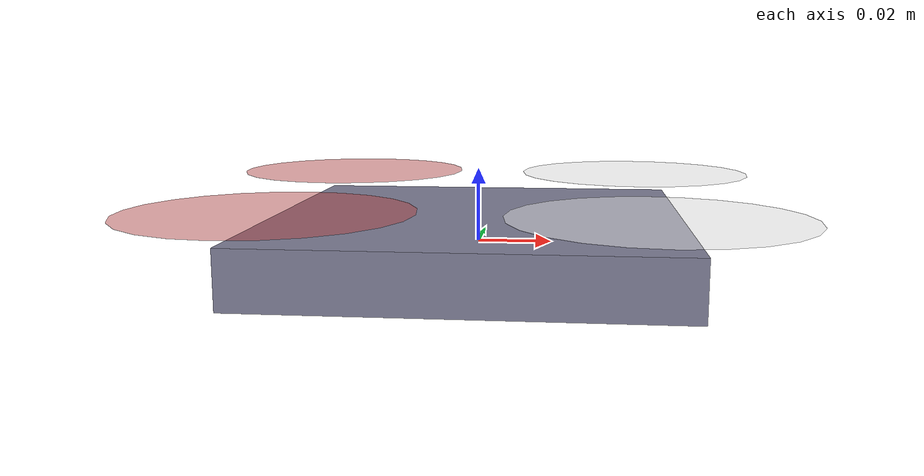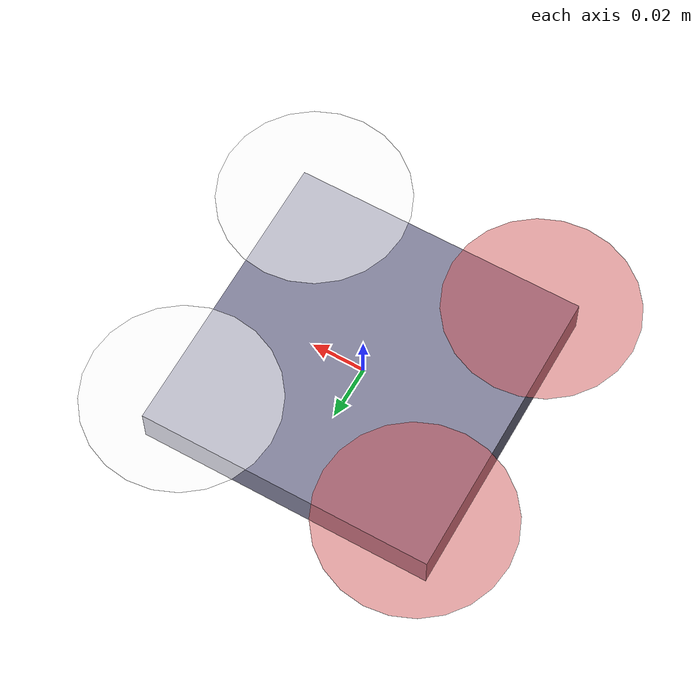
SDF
<?xml version="1.0"?>
<sdf version="1.5">
	<model name="iflight_force">
        <link name="body">
			<inertial>
                <pose>0 0 0 0 0 0</pose>
				<mass>0.382</mass>
				<inertia>
					<ixx>0.00039235</ixx>
                    <ixy>0.0</ixy>
                    <ixz>0.0</ixz>
					<iyy>0.00039235</iyy>
					<iyz>0.0</iyz>
                    <izz>0.0007704</izz>
				</inertia>
			</inertial>
			<collision name="body_collision">
				<geometry>
					<box>
						<size>0.11 0.11 0.015</size>
					</box>
				</geometry>
			</collision>
			<visual name="body_visual">
				<geometry>
					<box>
						<size>0.11 0.11 0.015</size>
					</box>
				</geometry>
				<material>
					<ambient>0.5 0.5 0.6 1</ambient>
					<diffuse>0.5 0.5 0.6 1</diffuse>
					<specular>0 0 0 1</specular>
					<emissive>0 0 0 1</emissive>
				</material>
			</visual>
		</link>

		<link name='imu_link'>
			<inertial>
				<mass>0.02</mass>
				<inertia>
				<ixx>0.000001</ixx>
				<ixy>0</ixy>
				<ixz>0</ixz>
				<iyy>0.000001</iyy>
				<iyz>0</iyz>
				<izz>0.000001</izz>
				</inertia>
			</inertial>
			<sensor name="imu_sensor" type="imu">
				<pose degrees="true">0 0 0 0 0 90</pose>
				<always_on>1</always_on>
				<update_rate>1000.0</update_rate>
				<topic>imu</topic>
				<visualize>true</visualize>
			</sensor>
		</link>

		<link name="camera_link">
			<pose degrees="true">-1 0 0.4 0 15 0</pose>
			<inertial>
				<mass>0</mass>
				<inertia>
					<ixx>0.0</ixx>
					<ixy>0</ixy>
					<ixz>0</ixz>
					<iyy>0.0</iyy>
					<iyz>0</iyz>
					<izz>0.0</izz>
				</inertia>
			</inertial>
			<sensor name="camera" type="camera">
				<camera>
				<horizontal_fov>1.047</horizontal_fov>
				<image>
					<width>1280</width>
					<height>720</height>
				</image>
				<clip>
					<near>0.1</near>
					<far>500</far>
				</clip>
				</camera>
				<always_on>1</always_on>
				<update_rate>60</update_rate>
				<visualize>true</visualize>
				<topic>camera</topic>
			</sensor>
		</link>
		<link name="prop_0"> <!-- front right -->
			<pose>0.045 -0.045 0.0142 0 0 0</pose>
			<inertial>
                <pose>0 0 0 0 0 0</pose>
				<mass>0.002</mass>
				<inertia>
					<ixx>6.125E-7</ixx>
                    <ixy>0.0</ixy>
                    <ixz>0.0</ixz>
					<iyy>6.125E-7</iyy>
					<iyz>0.0</iyz>
                    <izz>0.000001225</izz>
				</inertia>
			</inertial>
			<collision name="prop_0_collision">
				<geometry>
					<cylinder>
						<radius>0.035</radius>
						<length>0.0001</length>
					</cylinder>
				</geometry>
			</collision>
			<visual name="prop_0_visual">
				<geometry><cylinder><radius>0.035</radius><length>0.0001</length></cylinder></geometry>
				<material><ambient>1 1 1 0.5</ambient><diffuse>1 1 1 0.5</diffuse></material>
			</visual>
		</link>

		<link name="prop_1"> <!-- front left -->
			<pose>0.045 0.045 0.0142 0 0 0</pose>
			<inertial>
                <pose>0 0 0 0 0 0</pose>
				<mass>0.002</mass>
				<inertia>
					<ixx>6.125E-7</ixx>
                    <ixy>0.0</ixy>
                    <ixz>0.0</ixz>
					<iyy>6.125E-7</iyy>
					<iyz>0.0</iyz>
                    <izz>0.000001225</izz>
				</inertia>
			</inertial>
			<collision name="prop_1_collision">
				<geometry>
					<cylinder>
						<radius>0.035</radius>
						<length>0.0001</length>
					</cylinder>
				</geometry>
			</collision>
			<visual name="prop_1_visual">
				<geometry><cylinder><radius>0.035</radius><length>0.0001</length></cylinder></geometry>
				<material><ambient>1 1 1 0.5</ambient><diffuse>1 1 1 0.5</diffuse></material>
			</visual>
		</link>

		<link name="prop_2"> <!-- rear left -->
			<pose>-0.045 0.045 0.0142 0 0 0</pose>
			<inertial>
                <pose>0 0 0 0 0 0</pose>
				<mass>0.002</mass>
				<inertia>
					<ixx>6.125E-7</ixx>
                    <ixy>0.0</ixy>
                    <ixz>0.0</ixz>
					<iyy>6.125E-7</iyy>
					<iyz>0.0</iyz>
                    <izz>0.000001225</izz>
				</inertia>
			</inertial>
			<collision name="prop_2_collision">
				<geometry>
					<cylinder>
						<radius>0.035</radius>
						<length>0.0001</length>
					</cylinder>
				</geometry>
			</collision>
			<visual name="prop_2_visual">
				<geometry><cylinder><radius>0.035</radius><length>0.0001</length></cylinder></geometry>
				<material><ambient>0.8 0.3 0.3 0.5</ambient><diffuse>0.8 0.3 0.3 0.5</diffuse></material>
			</visual>
		</link>

		<link name="prop_3"> <!-- rear right -->
			<pose>-0.045 -0.045 0.0142 0 0 0</pose>
			<inertial>
                <pose>0 0 0 0 0 0</pose>
				<mass>0.002</mass>
				<inertia>
					<ixx>6.125E-7</ixx>
                    <ixy>0.0</ixy>
                    <ixz>0.0</ixz>
					<iyy>6.125E-7</iyy>
					<iyz>0.0</iyz>
                    <izz>0.000001225</izz>
				</inertia>
			</inertial>
			<collision name="prop_3_collision">
				<geometry>
					<cylinder>
						<radius>0.035</radius>
						<length>0.0001</length>
					</cylinder>
				</geometry>
			</collision>
			<visual name="prop_3_visual">
				<geometry><cylinder><radius>0.035</radius><length>0.0001</length></cylinder></geometry>
				<material><ambient>0.8 0.3 0.3 0.5</ambient><diffuse>0.8 0.3 0.3 0.5</diffuse></material>
			</visual>
		</link>
		<joint name='imu_joint' type='fixed'>
			<child>imu_link</child>
			<parent>body</parent>
			<axis>
				<xyz>0 0 1</xyz>
				<limit>
				<lower>0</lower>
				<upper>0</upper>
				<effort>0</effort>
				<velocity>0</velocity>
				</limit>
				<dynamics>
				<damping>1.0</damping>
				</dynamics>
			</axis>
		</joint>

		<joint name="camera_joint" type="fixed">
				<child>camera_link</child>
				<parent>body</parent>
		</joint>

		<joint name="prop_0_joint" type="fixed">
			<child>prop_0</child>
			<parent>body</parent>
		</joint>

		<joint name="prop_1_joint" type="fixed">
			<child>prop_1</child>
			<parent>body</parent>
		</joint>

		<joint name="prop_2_joint" type="fixed">
			<child>prop_2</child>
			<parent>body</parent>
		</joint>

		<joint name="prop_3_joint" type="fixed">
			<child>prop_3</child>
			<parent>body</parent>
		</joint>

		<plugin filename="gz-sim-imu-system"
	        name="gz::sim::systems::Imu">
		</plugin>
		<plugin filename="Iflight" name="Iflight">
			<prop index="0">
				<link_name>prop_0</link_name>
				<direction>cw</direction>
			</prop>
			<prop index="1">
				<link_name>prop_1</link_name>
				<direction>ccw</direction>
			</prop>
			<prop index="2">
				<link_name>prop_2</link_name>
				<direction>cw</direction>
			</prop>
			<prop index="3">
				<link_name>prop_3</link_name>
				<direction>ccw</direction>
			</prop>
		</plugin>

	</model>
</sdf>
